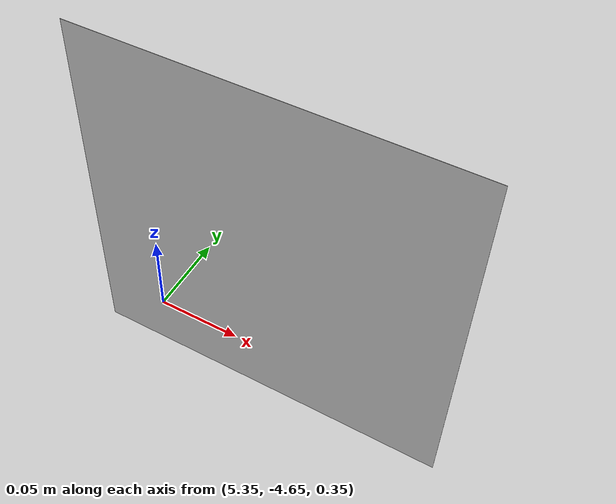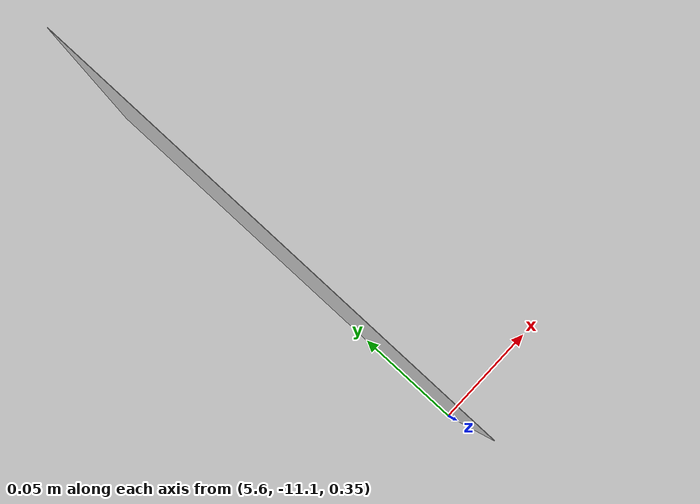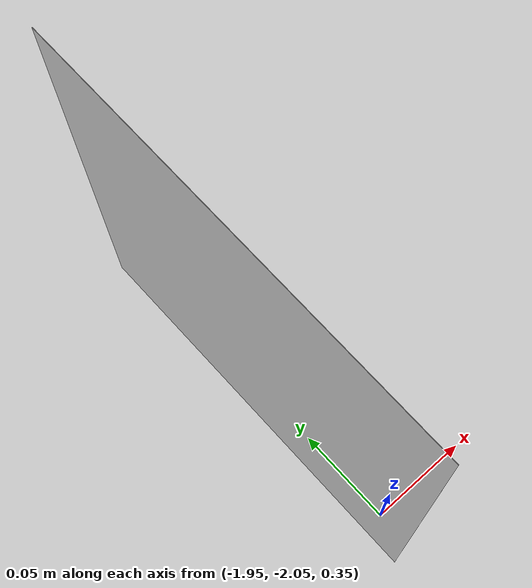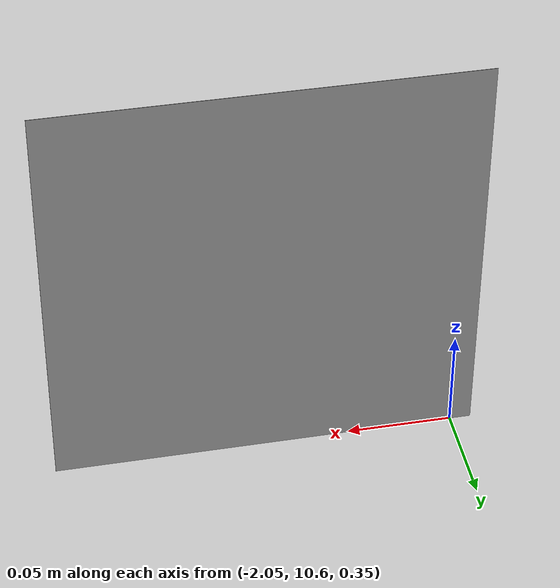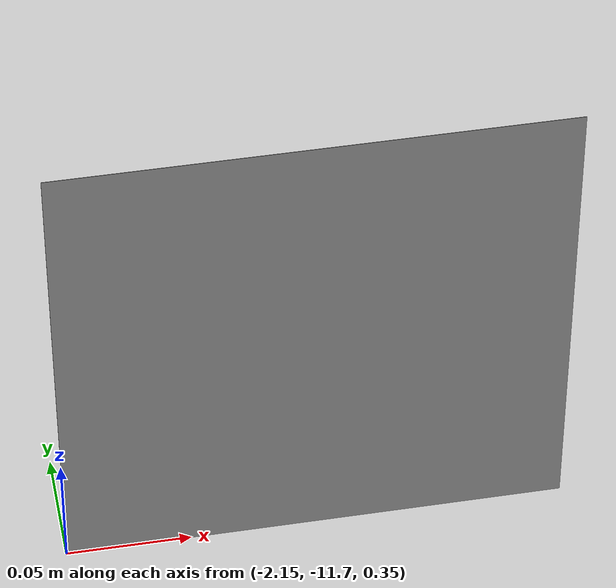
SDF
<sdf version="1.6">
 <world name="IARRC Urban">
  <scene>
   <ambient>1.0 1.0 1.0 1.0</ambient>
   <background>0.7 0.7 0.7 1.0</background>
   <shadows>true</shadows>
   <grid>false</grid>
   <origin_visual>false</origin_visual>
  </scene>
  <include><uri>model://sun</uri></include>
  <include><uri>model://IARRCUrbanTrack</uri></include>
  <include name="Sign_1">
   <name>Sign_1</name>
   <uri>model://IARRCUrbanArrow</uri>
   <pose>-2.05 -11.7 .45 1.5708 1.5708 0</pose>
  </include>
  <include>
   <name>Sign_2</name>
   <uri>model://IARRCUrbanArrow</uri>
   <pose>5.6 -11 .45 1.5708 -1.5708 -1.5708</pose>
  </include>
  <include>
   <name>Sign_3</name>
   <uri>model://IARRCUrbanArrow</uri>
   <pose>5.43 -4.67 .45 1.5708 -1.5708 0</pose>
  </include>
  <include>
   <name>Sign_4</name>
   <uri>model://IARRCUrbanArrow</uri>
   <pose>-1.96 -1.97 .45 1.5708 1.5708 1.5708</pose>
  </include>
  <include><name>Sign_5</name><uri>model://IARRCUrbanArrow</uri><pose>-1.96 3 .45 1.5708 0 0</pose></include>
  <include><name>Sign_6</name><uri>model://IARRCUrbanArrow</uri><pose>-1.96 10.6 .45 1.5708 0 0</pose></include>
 </world>
</sdf>

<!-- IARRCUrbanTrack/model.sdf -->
<sdf version="1.6">
  <model name="IARRCUrbanTrack">
    <static>true</static>
    <link name="link">
      <collision name="collision">
        <geometry>
          <plane>
            <normal>0 0 1</normal>
            <size>14.85 30.825</size>
          </plane>
        </geometry>
        <surface>
          <friction>
            <ode>
              <mu>100</mu>
              <mu2>50</mu2>
            </ode>
          </friction>
        </surface>
      </collision>
      <visual name="visual">
        <cast_shadows>true</cast_shadows>
        <geometry>
          <plane>
            <normal>0 0 1</normal>
            <size>14.85 30.825</size>
          </plane>
        </geometry>
        <material>
          <script>
            <uri>model://../materials/iarrcurbantrack.material</uri>
            <name>Gazebo/iarrcurbantrack</name>
          </script>
        </material>
      </visual>
    </link>
  </model>
</sdf>

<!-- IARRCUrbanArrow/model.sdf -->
<sdf version="1.6">
  <model name="IARRCUrbanArrow">
    <static>true</static>
    <link name="link">
      <visual name="visual">
        <cast_shadows>true</cast_shadows>
        <geometry>
          <plane>
            <normal>0 0 1</normal>
            <size>.2 .2</size>
          </plane>
        </geometry>
        <material>
          <script>
            <uri>model://../materials/iarrcUrbanArrow.material</uri>
            <name>Gazebo/iarrcUrbanArrow</name>
          </script>
        </material>
      </visual>
    </link>
  </model>
</sdf>
